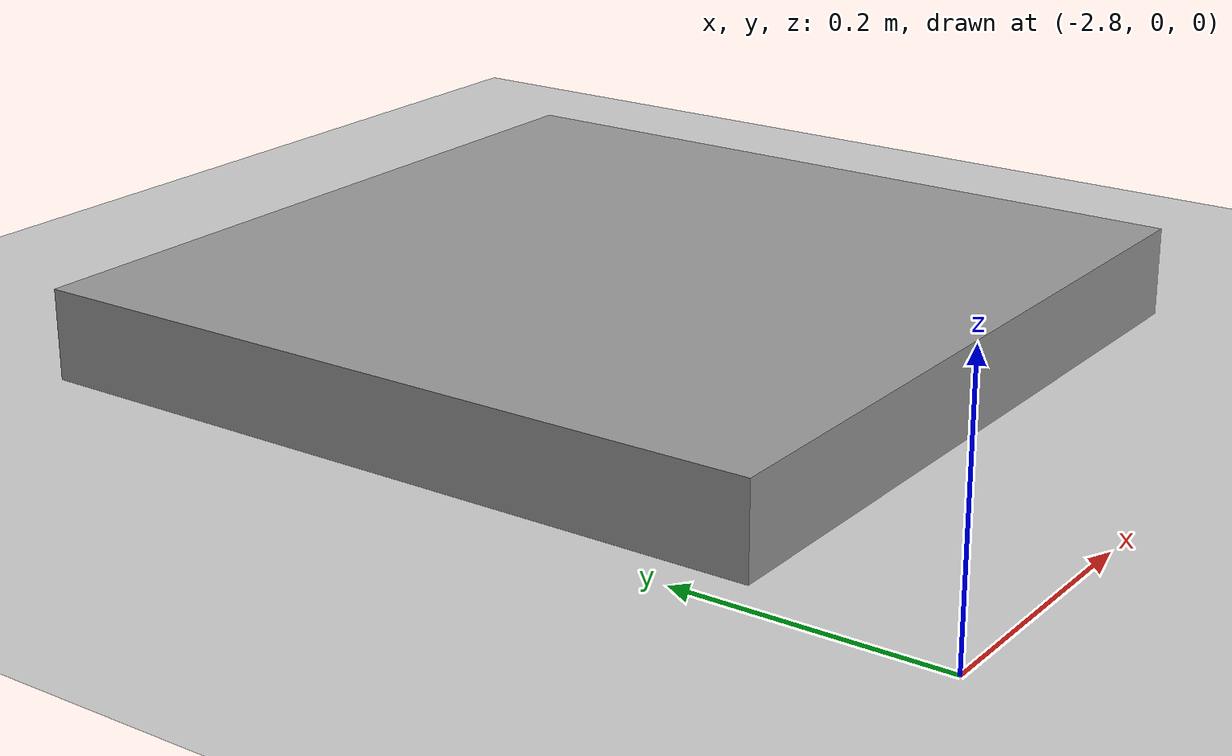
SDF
<?xml version="1.0" ?>

<sdf version="1.5">
    <world name="box_world">
        <!-- Target real time factor is the product of max_step_size and real_time_update_rate -->
        <!-- Negative real_time_update_rate means that Gazebo will run as fast as possible -->
        <physics type="ode">
            <type>world</type>
            <max_step_size>0.001</max_step_size>
            <real_time_update_rate>1000</real_time_update_rate>
            <iters>500</iters>
        </physics>
        <!-- A global light source -->
        <include>
            <uri>model://sun</uri>
        </include>
        <!-- A ground plane -->
        <include>
            <uri>model://ground_plane</uri>
        </include>

        <!-- Adding a box model with specified size and pose -->
        <model name='box'>
            <pose>-2.4683 0.4626 0 0 0 0</pose> <!-- Position (x=1.13, y=0, z=0), no rotation -->
            <link name='link'>
                <pose>0 0 0.0356 0 0 0</pose> <!-- Center the box at half height -->
                <collision name='collision'>
                    <geometry>
                        <box>
                            <size>0.60452 0.60452 0.0712</size>
                        </box>
                    </geometry>
                    <surface>
                        <friction>
                            <ode>
                                <mu>1</mu>
                                <mu2>1</mu2>
                            </ode>
                        </friction>
                    </surface>
                </collision>
                <visual name='visual'>
                    <geometry>
                        <box>
                            <size>0.60452 0.60452 0.0712</size>
                        </box>
                    </geometry>
                    <material>
                        <script>
                            <uri>file://media/materials/scripts/gazebo.material</uri>
                            <name>Gazebo/Gray</name>
                        </script>
                    </material>
                </visual>
            </link>
            <static>true</static>
        </model>

    </world>
</sdf>
